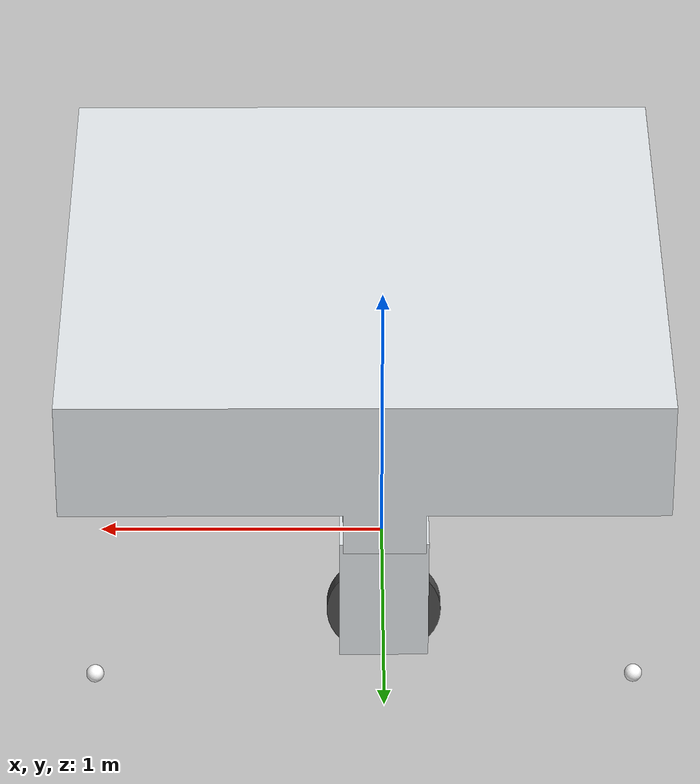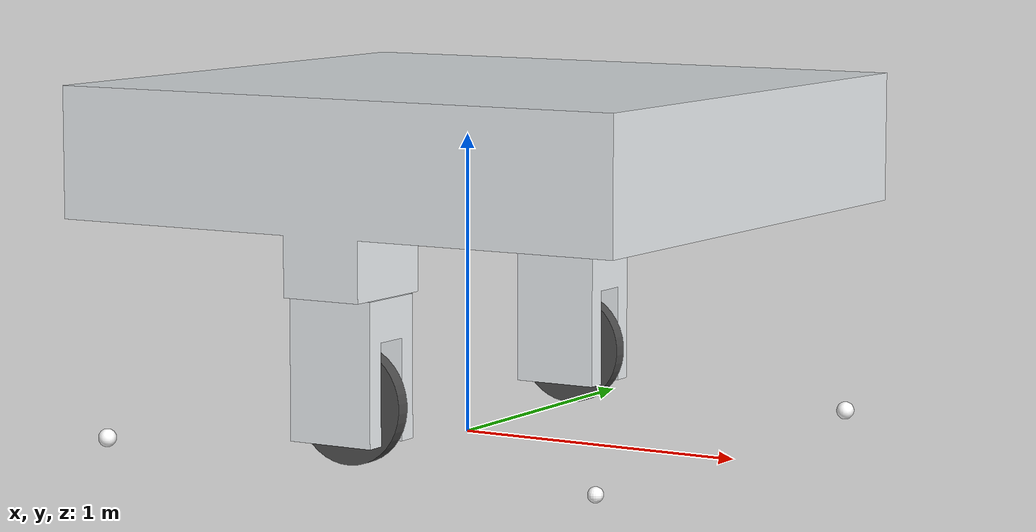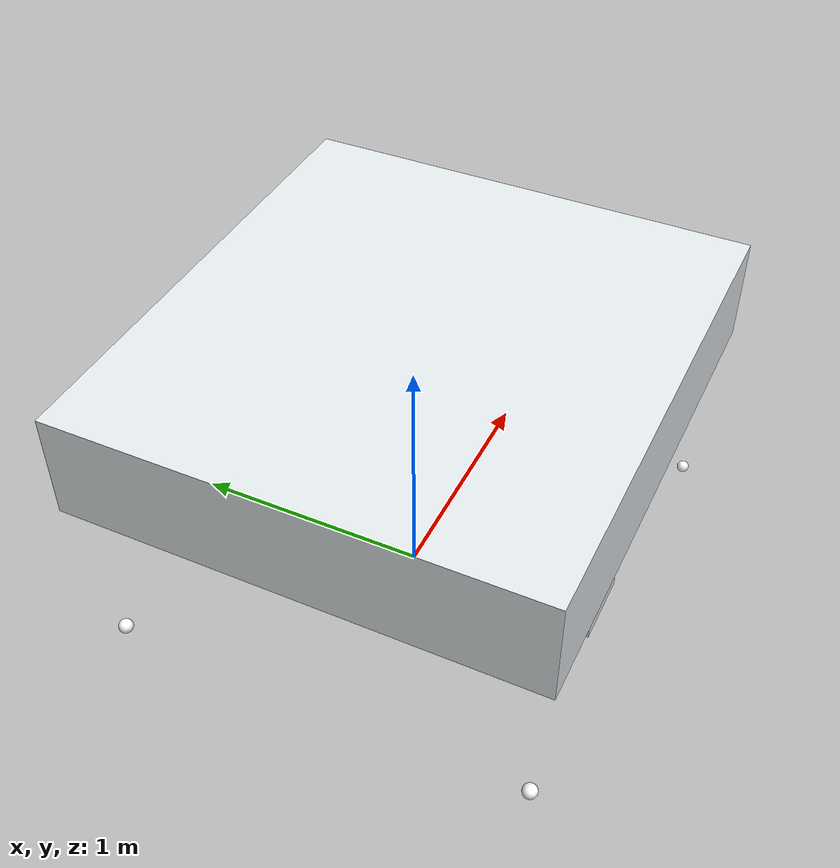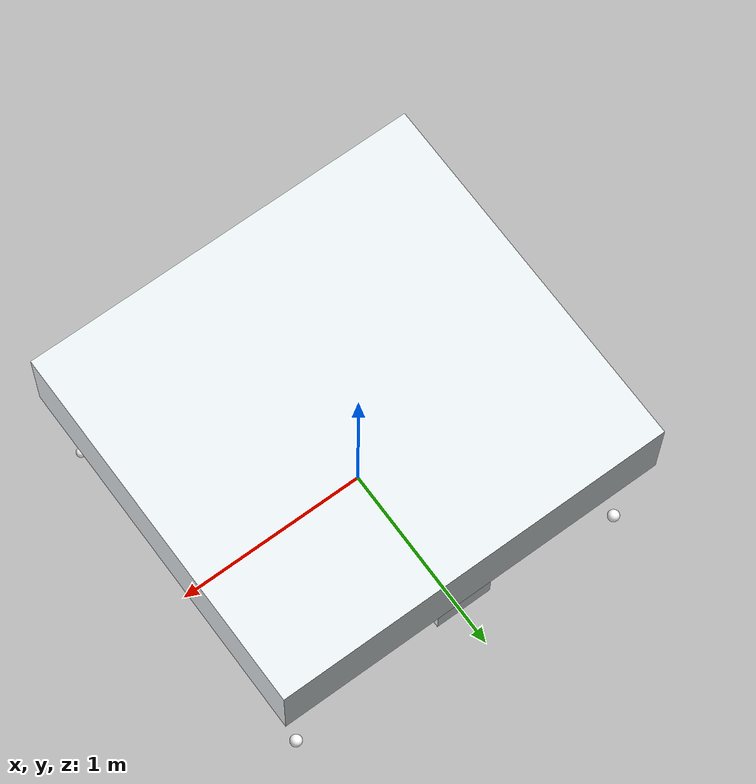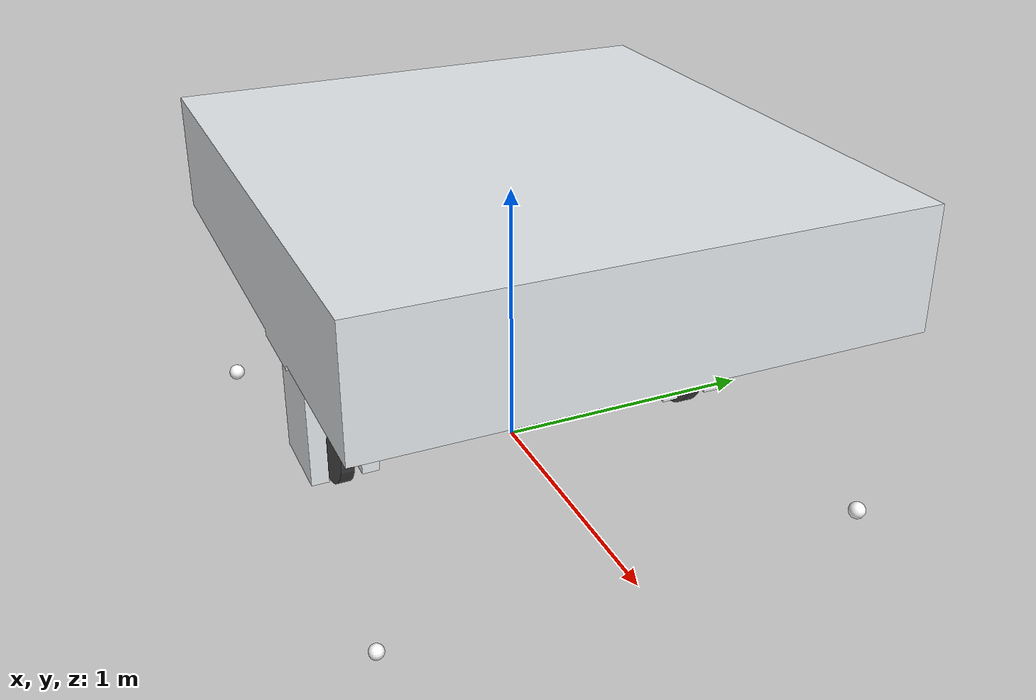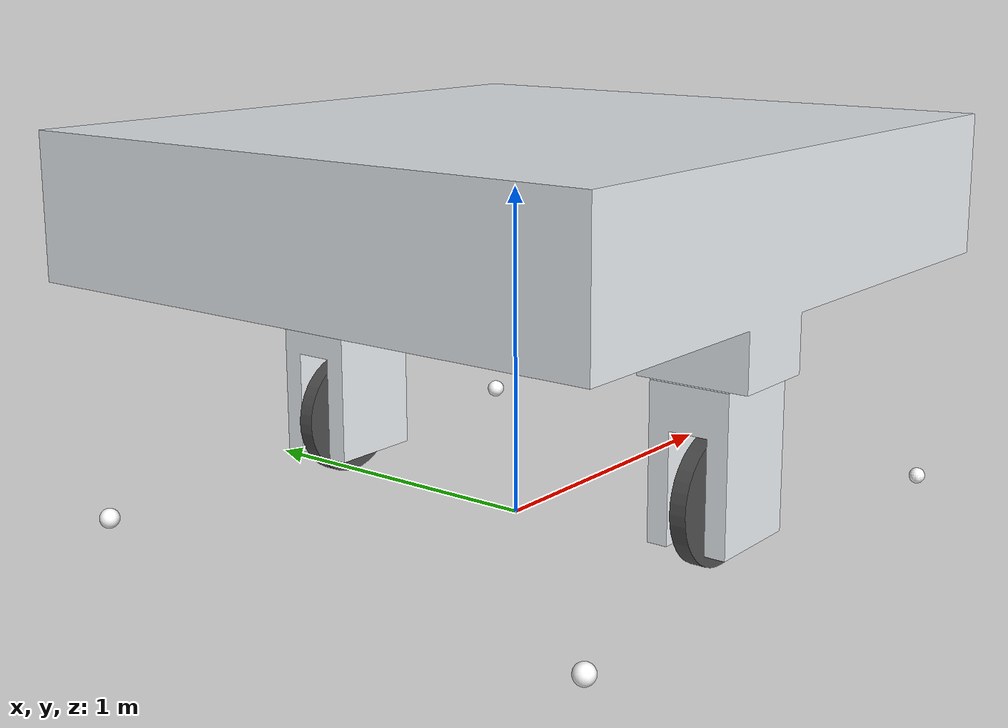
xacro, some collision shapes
<?xml version="1.0" encoding="utf-8"?>
<robot
  name="robot_urdf">
  <link
    name="base_link">
  </link>
  <link
    name="chassis_link">
    <inertial>
      <origin
        xyz="-0.0030051 -4.1286E-16 -0.017698"
        rpy="0 0 0" />
      <mass
        value="62.522" />
      <inertia
        ixx="27.455"
        ixy="-5.3228E-14"
        ixz="-0.071116"
        iyy="29.275"
        iyz="-1.4137E-15"
        izz="51.49" />
    </inertial>
    <visual>
      <origin
        xyz="0 0 0"
        rpy="0 0 0" />
      <geometry>
        <mesh
          filename="package://robot_urdf/meshes/2w/chassis_link.STL" />
      </geometry>
      <material
        name="">
        <color
          rgba="0.89804 0.91765 0.92941 1" />
      </material>
    </visual>
    <collision>
      <origin
        xyz="0 0 0"
        rpy="0 0 0" />
      <geometry>
        <mesh
          filename="package://robot_urdf/meshes/2w/chassis_link.STL" />
      </geometry>
    </collision>
  </link>
  <joint
    name="chassis_joint"
    type="fixed">
    <origin
      xyz="0.067275 0 0.96832"
      rpy="0 0 0" />
    <parent
      link="base_link" />
    <child
      link="chassis_link" />
    <axis
      xyz="0 0 0" />
  </joint>
  <link
    name="left_wheel_holder_link">
    <inertial>
      <origin
        xyz="2.0817E-16 -2.2204E-16 -0.2296"
        rpy="0 0 0" />
      <mass
        value="4.2419" />
      <inertia
        ixx="0.1287"
        ixy="-1.0555E-16"
        ixz="-1.5933E-16"
        iyy="0.13522"
        iyz="5.002E-17"
        izz="0.079121" />
    </inertial>
    <visual>
      <origin
        xyz="0 0 0"
        rpy="0 0 0" />
      <geometry>
        <mesh
          filename="package://robot_urdf/meshes/2w/left_wheel_holder_link.STL" />
      </geometry>
      <material
        name="">
        <color
          rgba="0.89804 0.91765 0.92941 1" />
      </material>
    </visual>
    <collision>
      <origin
        xyz="0 0 0"
        rpy="0 0 0" />
      <geometry>
        <mesh
          filename="package://robot_urdf/meshes/2w/left_wheel_holder_link.STL" />
      </geometry>
    </collision>
  </link>
  <joint
    name="left_wheel_holder_joint"
    type="fixed">
    <origin
      xyz="-0.067275 0.7012 -0.42432"
      rpy="0 0 0" />
    <parent
      link="chassis_link" />
    <child
      link="left_wheel_holder_link" />
    <axis
      xyz="0 0 0" />
  </joint>
  <link
    name="left_wheel_link">
    <inertial>
      <origin
        xyz="-6.9389E-18 1.1102E-16 -2.7756E-17"
        rpy="0 0 0" />
      <mass
        value="5.9118" />
      <inertia
        ixx="0.056856"
        ixy="-6.9119E-18"
        ixz="-4.2487E-34"
        iyy="0.11125"
        iyz="-5.5409E-35"
        izz="0.056856" />
    </inertial>
    <visual>
      <origin
        xyz="0 0 0"
        rpy="0 0 0" />
      <geometry>
        <mesh
          filename="package://robot_urdf/meshes/2w/left_wheel_link.STL" />
      </geometry>
      <material
        name="">
        <color
          rgba="0.29804 0.29804 0.29804 1" />
      </material>
    </visual>
    <collision>
      <origin
        xyz="0 0 0"
        rpy="0 0 0" />
      <geometry>
        <mesh
          filename="package://robot_urdf/meshes/2w/left_wheel_link.STL" />
      </geometry>
    </collision>
  </link>
  <joint
    name="left_wheel_joint"
    type="continuous">
    <origin
      xyz="0 0 -0.35"
      rpy="0 0 0" />
    <parent
      link="left_wheel_holder_link" />
    <child
      link="left_wheel_link" />
    <axis
      xyz="0 1 0" />
    <dynamics damping="0.1" friction="0.05" />
    <limit
      effort="100"
      velocity="10" />
  </joint>
  <link
    name="right_wheel_holder_link">
    <inertial>
      <origin
        xyz="1.1102E-16 -1.1102E-16 -0.2296"
        rpy="0 0 0" />
      <mass
        value="4.2419" />
      <inertia
        ixx="0.1287"
        ixy="-8.8611E-17"
        ixz="-1.7835E-16"
        iyy="0.13522"
        iyz="-2.9429E-18"
        izz="0.079121" />
    </inertial>
    <visual>
      <origin
        xyz="0 0 0"
        rpy="0 0 0" />
      <geometry>
        <mesh
          filename="package://robot_urdf/meshes/2w/right_wheel_holder_link.STL" />
      </geometry>
      <material
        name="">
        <color
          rgba="0.89804 0.91765 0.92941 1" />
      </material>
    </visual>
    <collision>
      <origin
        xyz="0 0 0"
        rpy="0 0 0" />
      <geometry>
        <mesh
          filename="package://robot_urdf/meshes/2w/right_wheel_holder_link.STL" />
      </geometry>
    </collision>
  </link>
  <joint
    name="right_wheel_holder_joint"
    type="fixed">
    <origin
      xyz="-0.067275 -0.7012 -0.42432"
      rpy="0 0 0" />
    <parent
      link="chassis_link" />
    <child
      link="right_wheel_holder_link" />
    <axis
      xyz="0 0 0" />
  </joint>
  <link
    name="right_wheel_link">
    <inertial>
      <origin
        xyz="-6.9389E-18 -1.1102E-16 -2.7756E-17"
        rpy="0 0 0" />
      <mass
        value="5.9118" />
      <inertia
        ixx="0.056856"
        ixy="-3.2189E-35"
        ixz="-8.4142E-34"
        iyy="0.11125"
        iyz="1.4733E-18"
        izz="0.056856" />
    </inertial>
    <visual>
      <origin
        xyz="0 0 0"
        rpy="0 0 0" />
      <geometry>
        <mesh
          filename="package://robot_urdf/meshes/2w/right_wheel_link.STL" />
      </geometry>
      <material
        name="">
        <color
          rgba="0.29804 0.29804 0.29804 1" />
      </material>
    </visual>
    <collision>
      <origin
        xyz="0 0 0"
        rpy="0 0 0" />
      <geometry>
        <mesh
          filename="package://robot_urdf/meshes/2w/right_wheel_link.STL" />
      </geometry>
    </collision>
  </link>
  <joint
    name="right_wheel_joint"
    type="continuous">
    <origin
      xyz="0 0 -0.35"
      rpy="0 0 0" />
    <parent
      link="right_wheel_holder_link" />
    <child
      link="right_wheel_link" />
    <axis
      xyz="0 1 0" />
    <dynamics damping="0.1" friction="0.05" />
    <limit
      effort="100"
      velocity="10" />
  </joint>

  <link
    name="depth_camera_link">
  </link>

  <joint
    name="depth_camera_joint"
    type="fixed">
    <origin
      xyz="1.917 0 0.30271"
      rpy="0 1.570796 0" />
    <parent
      link="chassis_link" />
    <child
      link="depth_camera_link" />
    <axis
      xyz="0 0 0" />
  </joint>

  <link
    name="ball_link_fl">
    <inertial>
      <origin
        xyz="0 0 0"
        rpy="0 0 0" />
      <mass
        value="0.20471" />
      <inertia
        ixx="7.3694E-05"
        ixy="0"
        ixz="0"
        iyy="7.3694E-05"
        iyz="0"
        izz="7.3694E-05" />
    </inertial>
    <visual>
      <origin
        xyz="0 0 0"
        rpy="0 0 0" />
      <geometry>
        <mesh
          filename="package://robot_urdf/meshes/2w/ball_link_fl.STL" />
      </geometry>
      <material
        name="">
        <color
          rgba="1 1 1 1" />
      </material>
    </visual>
    <collision>
      <origin xyz="0 0 0" rpy="0 0 0" />
      <geometry>
        <sphere radius="0.025" />
      </geometry>
    </collision>
  </link>

  <joint
    name="ball_joint_fl"
    type="fixed">
    <origin
      xyz="0.917 0.866 -0.93831"
      rpy="0 0 0" />
    <parent
      link="chassis_link" />
    <child
      link="ball_link_fl" />
    <axis
      xyz="0 0 0" />
  </joint>

  <link
    name="ball_link_fr">
    <inertial>
      <origin
        xyz="0 -1.1102E-16 0"
        rpy="0 0 0" />
      <mass
        value="0.20471" />
      <inertia
        ixx="7.3694E-05"
        ixy="0"
        ixz="0"
        iyy="7.3694E-05"
        iyz="0"
        izz="7.3694E-05" />
    </inertial>
    <visual>
      <origin
        xyz="0 0 0"
        rpy="0 0 0" />
      <geometry>
        <mesh
          filename="package://robot_urdf/meshes/2w/ball_link_fr.STL" />
      </geometry>
      <material
        name="">
        <color
          rgba="1 1 1 1" />
      </material>
    </visual>
    <collision>
      <origin xyz="0 0 0" rpy="0 0 0" />
      <geometry>
        <sphere radius="0.025" />
      </geometry>
    </collision>
  </link>

  <joint
    name="ball_joint_fr"
    type="fixed">
    <origin
      xyz="0.917 -0.866 -0.93831"
      rpy="0 0 0" />
    <parent
      link="chassis_link" />
    <child
      link="ball_link_fr" />
    <axis
      xyz="0 0 0" />
  </joint>

  <link
    name="ball_link_br">
    <inertial>
      <origin
        xyz="0 -1.1102E-16 0"
        rpy="0 0 0" />
      <mass
        value="0.20471" />
      <inertia
        ixx="7.3694E-05"
        ixy="0"
        ixz="0"
        iyy="7.3694E-05"
        iyz="0"
        izz="7.3694E-05" />
    </inertial>
    <visual>
      <origin
        xyz="0 0 0"
        rpy="0 0 0" />
      <geometry>
        <mesh
          filename="package://robot_urdf/meshes/2w/ball_link_br.STL" />
      </geometry>
      <material
        name="">
        <color
          rgba="1 1 1 1" />
      </material>
    </visual>
    <collision>
      <origin xyz="0 0 0" rpy="0 0 0" />
      <geometry>
        <sphere radius="0.025" />
      </geometry>
    </collision>
  </link>

  <joint
    name="ball_joint_br"
    type="fixed">
    <origin
      xyz="-0.917 -0.866 -0.93831"
      rpy="3.1416 0 3.1416" />
    <parent
      link="chassis_link" />
    <child
      link="ball_link_br" />
    <axis
      xyz="0 0 0" />
  </joint>

  <link
    name="ball_link_bl">
    <inertial>
      <origin
        xyz="0 0 0"
        rpy="0 0 0" />
      <mass
        value="0.20471" />
      <inertia
        ixx="7.3694E-05"
        ixy="0"
        ixz="0"
        iyy="7.3694E-05"
        iyz="0"
        izz="7.3694E-05" />
    </inertial>
    <visual>
      <origin
        xyz="0 0 0"
        rpy="0 0 0" />
      <geometry>
        <mesh
          filename="package://robot_urdf/meshes/2w/ball_link_bl.STL" />
      </geometry>
      <material
        name="">
        <color
          rgba="1 1 1 1" />
      </material>
    </visual>
    <collision>
      <origin xyz="0 0 0" rpy="0 0 0" />
      <geometry>
        <sphere radius="0.025" />
      </geometry>
    </collision>
  </link>

  <joint
    name="ball_joint_bl"
    type="fixed">
    <origin
      xyz="-0.917 0.866 -0.93831"
      rpy="0 0 0" />
    <parent
      link="chassis_link" />
    <child
      link="ball_link_bl" />
    <axis
      xyz="0 0 0" />
  </joint>

  <link name="path_plane"/>

  <joint
    name="path_plane_joint"
    type="fixed">
    <origin
      xyz="1.017 0 -0.93831"
      rpy="0 0 0" />
    <parent
      link="chassis_link" />
    <child
      link="path_plane" />
    <axis
      xyz="0 0 0" />
  </joint>

  <ros2_control name="IgnitionSystem" type="system">

    <hardware>
      <plugin>ign_ros2_control/IgnitionSystem</plugin>
    </hardware>

    <joint name="left_wheel_joint">
      <command_interface name="velocity" />
      <state_interface name="position" />
      <state_interface name="velocity" />
    </joint>

    <joint name="right_wheel_joint">
      <command_interface name="velocity" />
      <state_interface name="position" />
      <state_interface name="velocity" />
    </joint>

  </ros2_control>

  <gazebo>

    <plugin filename="libign_ros2_control-system.so"
      name="ign_ros2_control::IgnitionROS2ControlPlugin">
      <robot_param>robot_description</robot_param>
      <robot_param_node>robot_state_publisher</robot_param_node>
      <parameters>$(find robot_urdf)/config/diffdrive.yaml</parameters>
    </plugin>

  </gazebo>

  <gazebo reference="left_wheel_link">
    <mu1>1.2</mu1>
    <mu2>1.2</mu2>
    <kp>1000000.0</kp>
    <kd>100.0</kd>
    <minDepth>0.001</minDepth>
    <maxContacts>1</maxContacts>
  </gazebo>

  <gazebo reference="right_wheel_link">
    <mu1>1.2</mu1>
    <mu2>1.2</mu2>
    <kp>1000000.0</kp>
    <kd>100.0</kd>
    <minDepth>0.001</minDepth>
    <maxContacts>1</maxContacts>
  </gazebo>

  <gazebo reference="ball_link_fl">
    <mu1>0.0</mu1>
    <mu2>0.0</mu2>
  </gazebo>

  <gazebo reference="ball_link_fr">
    <mu1>0.0</mu1>
    <mu2>0.0</mu2>
  </gazebo>

  <gazebo reference="ball_link_br">
    <mu1>0.0</mu1>
    <mu2>0.0</mu2>
  </gazebo>

  <gazebo reference="ball_link_bl">
    <mu1>0.0</mu1>
    <mu2>0.0</mu2>
  </gazebo>

  <gazebo reference="depth_camera_link">
    <sensor name="camera" type="camera">
      <ignition_frame_id>depth_camera_link</ignition_frame_id>
      <topic>/camera/image_raw</topic>
      <update_rate>30.0</update_rate>
      <always_on>true</always_on>
      <visualize>true</visualize>
      <camera>
        <horizontal_fov>1.3962634</horizontal_fov>
        <image>
          <width>1280</width>
          <height>720</height>
          <format>R8G8B8</format>
        </image>
        <clip>
          <near>0.02</near>
          <far>300.0</far>
        </clip>
        <noise>
          <type>gaussian</type>
          <mean>0.0</mean>
          <stddev>0.007</stddev>
        </noise>
      </camera>
    </sensor>
  </gazebo>

</robot>
